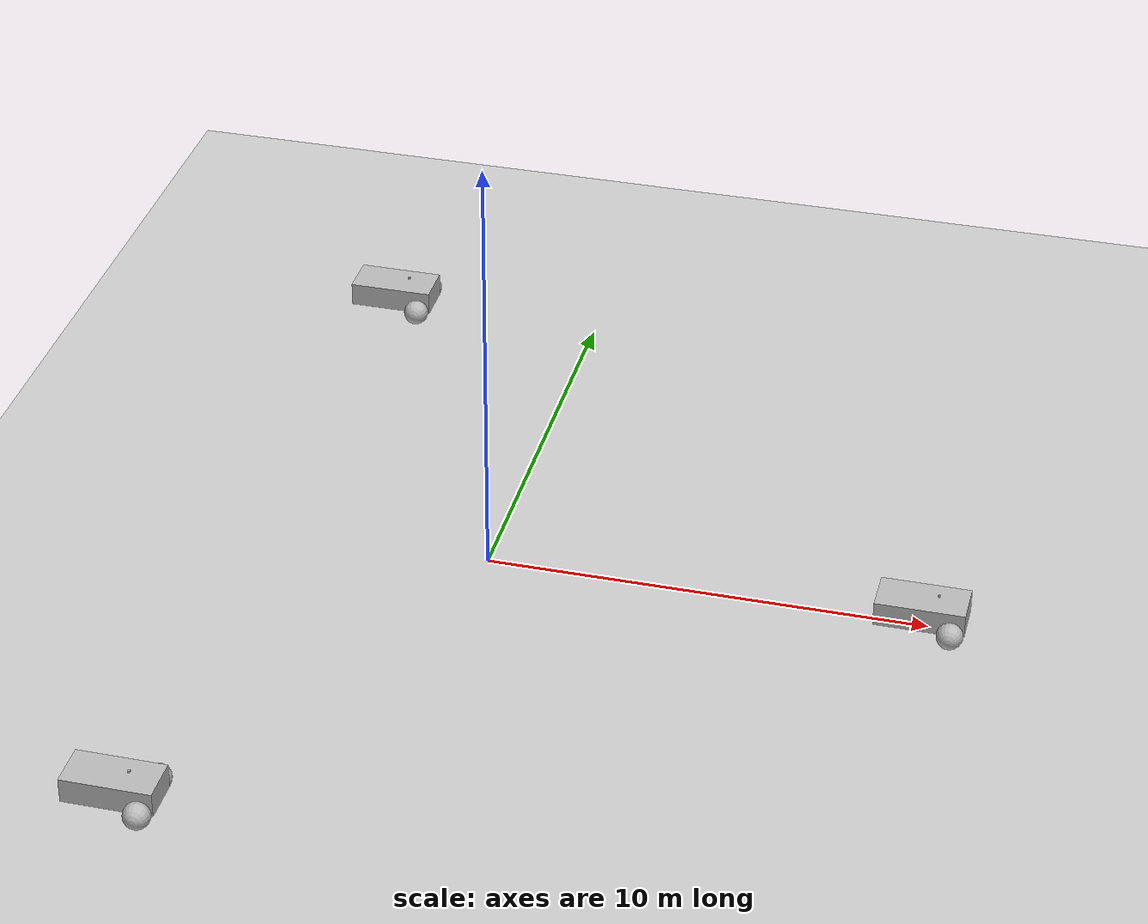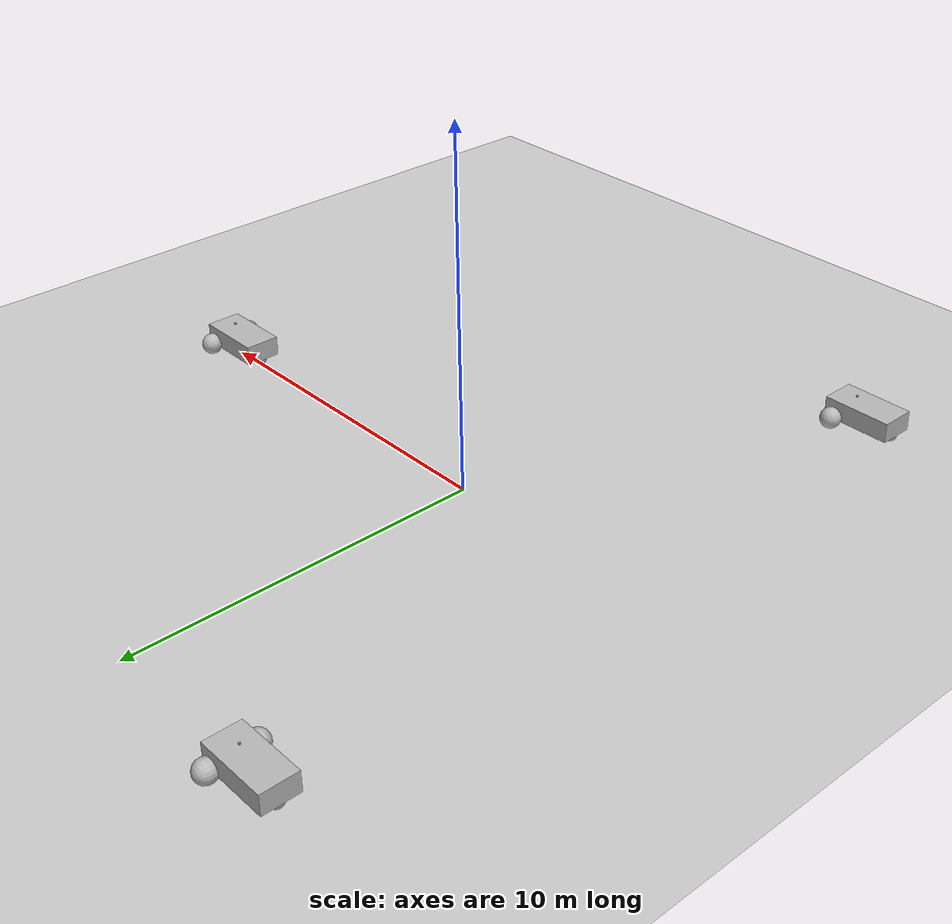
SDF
<?xml version="1.0"?>
<sdf version="1.6">
  <world name="default">

		<!-- A ground plane -->
		<include>
			<uri>model://ground_plane</uri>
		</include>

		<!-- A global light source -->
		<include>
			<uri>model://sun</uri>
		</include>

		<!-- robot1 -->
	<model name='my_robot1'>
      	<pose>10 0 0.325 0 -0 0</pose>

      	<link name='chassis'>
        	<pose>-0.151427 -0 0.175 0 -0 0</pose>
        	<inertial>
    	        <mass>1.14395</mass>
    	        <inertia>
    	        	<ixx>0.126164</ixx>
    	    	    <ixy>0</ixy>
    	    	    <ixz>0</ixz>
    	    	    <iyy>0.416519</iyy>
    	    	    <iyz>0</iyz>
    	    	    <izz>0.481014</izz>
            	</inertia>
     	   </inertial>
          <visual name='visual'>
          <geometry>
            <box>
              <size>2.01142 1 0.568726</size>
            </box>
          </geometry>
        </visual>
        <collision name='collision'>
          <geometry>
            <box>
              <size>2.01142 1 0.568726</size>
            </box>
          </geometry>
        </collision>
      </link>

      <link name='left_wheel'>
        <pose>0.554283 0.625029 -0.025 -1.5707 0 0</pose>
        <inertial>
          <mass>2</mass>
          <inertia>
            <ixx>0.145833</ixx>
            <ixy>0</ixy>
            <ixz>0</ixz>
            <iyy>0.145833</iyy>
            <iyz>0</iyz>
            <izz>0.125</izz>
          </inertia>
        </inertial>
        <visual name='visual'>
          <geometry>
            <sphere>
              <radius>0.3</radius>
            </sphere>
          </geometry>
        </visual>
        <collision name='collision'>
          <geometry>
            <sphere>
              <radius>0.3</radius>
            </sphere>
          </geometry>
          <surface>
            <friction>
              <ode>
                <mu>1</mu>
                <mu2>1</mu2>
                <slip1>0</slip1>
                <slip2>0</slip2>
              </ode>
            </friction>
            <contact>
              <ode>
                <soft_cfm>0</soft_cfm>
                <soft_erp>0.2</soft_erp>
                <kp>1e+13</kp>
                <kd>1</kd>
                <max_vel>0.01</max_vel>
                <min_depth>0.01</min_depth>
              </ode>
            </contact>
          </surface>
        </collision>
      </link>

      <link name='right_wheel'>
        <pose>0.554282 -0.625029 -0.025 -1.5707 0 0</pose>
        <inertial>
          <mass>2</mass>
          <inertia>
            <ixx>0.145833</ixx>
            <ixy>0</ixy>
            <ixz>0</ixz>
            <iyy>0.145833</iyy>
            <iyz>0</iyz>
            <izz>0.125</izz>
          </inertia>
        </inertial>
        <visual name='visual'>
          <geometry>
            <sphere>
              <radius>0.3</radius>
            </sphere>
          </geometry>
        </visual>
        <collision name='collision'>
          <geometry>
            <sphere>
              <radius>0.3</radius>
            </sphere>
          </geometry>
          <surface>
            <friction>
              <ode>
                <mu>1</mu>
                <mu2>1</mu2>
                <slip1>0</slip1>
                <slip2>0</slip2>
              </ode>
            </friction>
            <contact>
              <ode>
                <soft_cfm>0</soft_cfm>
                <soft_erp>0.2</soft_erp>
                <kp>1e+13</kp>
                <kd>1</kd>
                <max_vel>0.01</max_vel>
                <min_depth>0.01</min_depth>
              </ode>
            </contact>
          </surface>
        </collision>
      </link>

      <link name='caster'>
        <pose>-0.957138 -0 -0.125 0 -0 0</pose>
        <inertial>
          <mass>1</mass>
          <inertia>
            <ixx>0.1</ixx>
            <ixy>0</ixy>
            <ixz>0</ixz>
            <iyy>0.1</iyy>
            <iyz>0</iyz>
            <izz>0.1</izz>
          </inertia>
        </inertial>
        <visual name='visual'>
          <geometry>
            <sphere>
              <radius>0.2</radius>
            </sphere>
          </geometry>
        </visual>
        <collision name='collision'>
          <geometry>
            <sphere>
              <radius>0.2</radius>
            </sphere>
          </geometry>
        </collision>
      </link>

      <joint name='left_wheel_joint' type='revolute'>
        <parent>chassis</parent>
        <child>left_wheel</child>
        <axis>
          <xyz>0 0 1</xyz>
          <limit>
            <lower>-1.79769e+308</lower>
            <upper>1.79769e+308</upper>
          </limit>
        </axis>
      </joint>

      <joint name='right_wheel_joint' type='revolute'>
        <parent>chassis</parent>
        <child>right_wheel</child>
        <axis>
          <xyz>0 0 1</xyz>
          <limit>
            <lower>-1.79769e+308</lower>
            <upper>1.79769e+308</upper>
          </limit>
        </axis>
      </joint>

      <joint name='caster_wheel' type='ball'>
        <parent>chassis</parent>
        <child>caster</child>
      </joint>

      <link name="ray_link">
      <pose>0.2 0 0.55 0 0 0</pose>
        <visual name="visual_box">
          <geometry>
            <box>
              <size>0.05 0.05 0.05</size>
            </box>
          </geometry>
        </visual>
        <collision name="collision_box">
          <geometry>
            <box>
              <size>0.05 0.05 0.05</size>
            </box>
          </geometry>
          <laser_retro>100.0</laser_retro>
        </collision>

        <sensor name="sensor_ray" type="ray">
          <ray>
            <scan>
              <horizontal>
                <samples>300</samples>
                <resolution>1.0</resolution>
                <min_angle>-3.14</min_angle>
                <max_angle>3.14</max_angle>
              </horizontal>
              <vertical>
                <samples>100</samples>
                <resolution>1.0</resolution>
                <min_angle>-0.0</min_angle>
                <max_angle>0.5236</max_angle>
              </vertical>
            </scan>
            <range>
              <min>0.05</min>
              <max>50.0</max>
            </range>
          </ray>
          <always_on>true</always_on>
          <update_rate>1.0</update_rate>
          <plugin name="pc2" filename="libgazebo_ros_ray_sensor.so">
            <ros>
              <namespace>/demo1</namespace>
              <remapping>~/out:=pointcloud2</remapping>
            </ros>
            <output_type>sensor_msgs/PointCloud2</output_type>
          </plugin>
          <plugin name="pc" filename="libgazebo_ros_ray_sensor.so">
            <ros>
              <namespace>/demo1</namespace>
              <remapping>~/out:=pointcloud</remapping>
            </ros>
            <output_type>sensor_msgs/PointCloud</output_type>
          </plugin>
          <plugin name="laserscan" filename="libgazebo_ros_ray_sensor.so">
            <ros>
              <namespace>/demo1</namespace>
              <remapping>~/out:=laserscan</remapping>
            </ros>
            <output_type>sensor_msgs/LaserScan</output_type>
          </plugin>
          <plugin name="range" filename="libgazebo_ros_ray_sensor.so">
            <ros>
              <namespace>/demo1</namespace>
              <remapping>~/out:=range</remapping>
            </ros>
            <output_type>sensor_msgs/Range</output_type>
          </plugin>
        </sensor>

   	</link>

      <joint name="ray_joint" type="fixed">
	<child>ray_link</child>
	<parent>chassis</parent>
      </joint>

      <plugin name='diff_drive' filename='libgazebo_ros_diff_drive.so'>
    <ros>
      <namespace>/demo1</namespace>
      <remapping>cmd_vel:=cmd_demo</remapping>
      <remapping>odom:=odom_demo</remapping>
    </ros>

   	    		<!-- wheels -->
   	    		<left_joint>left_wheel_joint</left_joint>
   	    		<right_joint>right_wheel_joint</right_joint>

   	    		<!-- kinematics -->
   	    		<wheel_separation>1.25</wheel_separation>
   	    		<wheel_diameter>0.6</wheel_diameter>

   	    		<!-- limits -->
   	    		<max_wheel_torque>20</max_wheel_torque>
   	    		<max_wheel_acceleration>1.0</max_wheel_acceleration>

   	    		<!-- output -->
   	    		<publish_odom>true</publish_odom>
   	    		<publish_odom_tf>true</publish_odom_tf>
   	    		<publish_wheel_tf>true</publish_wheel_tf>

   	    		<odometry_frame>odom_demo</odometry_frame>
   	    		<robot_base_frame>chassis</robot_base_frame>
   	  		</plugin>

    </model>

   		<!-- robot2 -->
		<model name='my_robot2'>
      	<pose>-5 10 0.325 0 -0 0</pose>

      	<link name='chassis'>
        	<pose>-0.151427 -0 0.175 0 -0 0</pose>
        	<inertial>
    	        <mass>1.14395</mass>
    	        <inertia>
    	        	<ixx>0.126164</ixx>
    	    	    <ixy>0</ixy>
    	    	    <ixz>0</ixz>
    	    	    <iyy>0.416519</iyy>
    	    	    <iyz>0</iyz>
    	    	    <izz>0.481014</izz>
            	</inertia>
     	   </inertial>
          <visual name='visual'>
          <geometry>
            <box>
              <size>2.01142 1 0.568726</size>
            </box>
          </geometry>
        </visual>
        <collision name='collision'>
          <geometry>
            <box>
              <size>2.01142 1 0.568726</size>
            </box>
          </geometry>
        </collision>
      </link>

      <link name='left_wheel'>
        <pose>0.554283 0.625029 -0.025 -1.5707 0 0</pose>
        <inertial>
          <mass>2</mass>
          <inertia>
            <ixx>0.145833</ixx>
            <ixy>0</ixy>
            <ixz>0</ixz>
            <iyy>0.145833</iyy>
            <iyz>0</iyz>
            <izz>0.125</izz>
          </inertia>
        </inertial>
        <visual name='visual'>
          <geometry>
            <sphere>
              <radius>0.3</radius>
            </sphere>
          </geometry>
        </visual>
        <collision name='collision'>
          <geometry>
            <sphere>
              <radius>0.3</radius>
            </sphere>
          </geometry>
          <surface>
            <friction>
              <ode>
                <mu>1</mu>
                <mu2>1</mu2>
                <slip1>0</slip1>
                <slip2>0</slip2>
              </ode>
            </friction>
            <contact>
              <ode>
                <soft_cfm>0</soft_cfm>
                <soft_erp>0.2</soft_erp>
                <kp>1e+13</kp>
                <kd>1</kd>
                <max_vel>0.01</max_vel>
                <min_depth>0.01</min_depth>
              </ode>
            </contact>
          </surface>
        </collision>
      </link>

      <link name='right_wheel'>
        <pose>0.554282 -0.625029 -0.025 -1.5707 0 0</pose>
        <inertial>
          <mass>2</mass>
          <inertia>
            <ixx>0.145833</ixx>
            <ixy>0</ixy>
            <ixz>0</ixz>
            <iyy>0.145833</iyy>
            <iyz>0</iyz>
            <izz>0.125</izz>
          </inertia>
        </inertial>
        <visual name='visual'>
          <geometry>
            <sphere>
              <radius>0.3</radius>
            </sphere>
          </geometry>
        </visual>
        <collision name='collision'>
          <geometry>
            <sphere>
              <radius>0.3</radius>
            </sphere>
          </geometry>
          <surface>
            <friction>
              <ode>
                <mu>1</mu>
                <mu2>1</mu2>
                <slip1>0</slip1>
                <slip2>0</slip2>
              </ode>
            </friction>
            <contact>
              <ode>
                <soft_cfm>0</soft_cfm>
                <soft_erp>0.2</soft_erp>
                <kp>1e+13</kp>
                <kd>1</kd>
                <max_vel>0.01</max_vel>
                <min_depth>0.01</min_depth>
              </ode>
            </contact>
          </surface>
        </collision>
      </link>

      <link name='caster'>
        <pose>-0.957138 -0 -0.125 0 -0 0</pose>
        <inertial>
          <mass>1</mass>
          <inertia>
            <ixx>0.1</ixx>
            <ixy>0</ixy>
            <ixz>0</ixz>
            <iyy>0.1</iyy>
            <iyz>0</iyz>
            <izz>0.1</izz>
          </inertia>
        </inertial>
        <visual name='visual'>
          <geometry>
            <sphere>
              <radius>0.2</radius>
            </sphere>
          </geometry>
        </visual>
        <collision name='collision'>
          <geometry>
            <sphere>
              <radius>0.2</radius>
            </sphere>
          </geometry>
        </collision>
      </link>

      <joint name='left_wheel_joint' type='revolute'>
        <parent>chassis</parent>
        <child>left_wheel</child>
        <axis>
          <xyz>0 0 1</xyz>
          <limit>
            <lower>-1.79769e+308</lower>
            <upper>1.79769e+308</upper>
          </limit>
        </axis>
      </joint>

      <joint name='right_wheel_joint' type='revolute'>
        <parent>chassis</parent>
        <child>right_wheel</child>
        <axis>
          <xyz>0 0 1</xyz>
          <limit>
            <lower>-1.79769e+308</lower>
            <upper>1.79769e+308</upper>
          </limit>
        </axis>
      </joint>

      <joint name='caster_wheel' type='ball'>
        <parent>chassis</parent>
        <child>caster</child>
      </joint>

      <link name="ray_link">
      <pose>0.2 0 0.55 0 0 0</pose>
        <visual name="visual_box">
          <geometry>
            <box>
              <size>0.05 0.05 0.05</size>
            </box>
          </geometry>
        </visual>
        <collision name="collision_box">
          <geometry>
            <box>
              <size>0.05 0.05 0.05</size>
            </box>
          </geometry>
          <laser_retro>100.0</laser_retro>
        </collision>

        <sensor name="sensor_ray" type="ray">
          <ray>
            <scan>
              <horizontal>
                <samples>300</samples>
                <resolution>1.0</resolution>
                <min_angle>-3.14</min_angle>
                <max_angle>3.14</max_angle>
              </horizontal>
              <vertical>
                <samples>100</samples>
                <resolution>1.0</resolution>
                <min_angle>-0.0</min_angle>
                <max_angle>0.5236</max_angle>
              </vertical>
            </scan>
            <range>
              <min>0.05</min>
              <max>50.0</max>
            </range>
          </ray>
          <always_on>true</always_on>
          <update_rate>1.0</update_rate>
          <plugin name="pc2" filename="libgazebo_ros_ray_sensor.so">
            <ros>
              <namespace>/demo2</namespace>
              <remapping>~/out:=pointcloud2</remapping>
            </ros>
            <output_type>sensor_msgs/PointCloud2</output_type>
          </plugin>
          <plugin name="pc" filename="libgazebo_ros_ray_sensor.so">
            <ros>
              <namespace>/demo2</namespace>
              <remapping>~/out:=pointcloud</remapping>
            </ros>
            <output_type>sensor_msgs/PointCloud</output_type>
          </plugin>
          <plugin name="laserscan" filename="libgazebo_ros_ray_sensor.so">
            <ros>
              <namespace>/demo2</namespace>
              <remapping>~/out:=laserscan</remapping>
            </ros>
            <output_type>sensor_msgs/LaserScan</output_type>
          </plugin>
          <plugin name="range" filename="libgazebo_ros_ray_sensor.so">
            <ros>
              <namespace>/demo2</namespace>
              <remapping>~/out:=range</remapping>
            </ros>
            <output_type>sensor_msgs/Range</output_type>
          </plugin>
        </sensor>

   	</link>

      <joint name="ray_joint" type="fixed">
	<child>ray_link</child>
	<parent>chassis</parent>
      </joint>

      <plugin name='diff_drive' filename='libgazebo_ros_diff_drive.so'>
    <ros>
      <namespace>/demo2</namespace>
      <remapping>cmd_vel:=cmd_demo</remapping>
      <remapping>odom:=odom_demo</remapping>
    </ros>

   	    		<!-- wheels -->
   	    		<left_joint>left_wheel_joint</left_joint>
   	    		<right_joint>right_wheel_joint</right_joint>

   	    		<!-- kinematics -->
   	    		<wheel_separation>1.25</wheel_separation>
   	    		<wheel_diameter>0.6</wheel_diameter>

   	    		<!-- limits -->
   	    		<max_wheel_torque>20</max_wheel_torque>
   	    		<max_wheel_acceleration>1.0</max_wheel_acceleration>

   	    		<!-- output -->
   	    		<publish_odom>true</publish_odom>
   	    		<publish_odom_tf>true</publish_odom_tf>
   	    		<publish_wheel_tf>true</publish_wheel_tf>

   	    		<odometry_frame>odom_demo</odometry_frame>
   	    		<robot_base_frame>chassis</robot_base_frame>
   	  		</plugin>

    </model>

    	<!-- robot3 -->
		<model name='my_robot3'>
      	<pose>-5 -10 0.325 0 -0 0</pose>

      	<link name='chassis'>
        	<pose>-0.151427 -0 0.175 0 -0 0</pose>
        	<inertial>
    	        <mass>1.14395</mass>
    	        <inertia>
    	        	<ixx>0.126164</ixx>
    	    	    <ixy>0</ixy>
    	    	    <ixz>0</ixz>
    	    	    <iyy>0.416519</iyy>
    	    	    <iyz>0</iyz>
    	    	    <izz>0.481014</izz>
            	</inertia>
     	   </inertial>
          <visual name='visual'>
          <geometry>
            <box>
              <size>2.01142 1 0.568726</size>
            </box>
          </geometry>
        </visual>
        <collision name='collision'>
          <geometry>
            <box>
              <size>2.01142 1 0.568726</size>
            </box>
          </geometry>
        </collision>
      </link>

      <link name='left_wheel'>
        <pose>0.554283 0.625029 -0.025 -1.5707 0 0</pose>
        <inertial>
          <mass>2</mass>
          <inertia>
            <ixx>0.145833</ixx>
            <ixy>0</ixy>
            <ixz>0</ixz>
            <iyy>0.145833</iyy>
            <iyz>0</iyz>
            <izz>0.125</izz>
          </inertia>
        </inertial>
        <visual name='visual'>
          <geometry>
            <sphere>
              <radius>0.3</radius>
            </sphere>
          </geometry>
        </visual>
        <collision name='collision'>
          <geometry>
            <sphere>
              <radius>0.3</radius>
            </sphere>
          </geometry>
          <surface>
            <friction>
              <ode>
                <mu>1</mu>
                <mu2>1</mu2>
                <slip1>0</slip1>
                <slip2>0</slip2>
              </ode>
            </friction>
            <contact>
              <ode>
                <soft_cfm>0</soft_cfm>
                <soft_erp>0.2</soft_erp>
                <kp>1e+13</kp>
                <kd>1</kd>
                <max_vel>0.01</max_vel>
                <min_depth>0.01</min_depth>
              </ode>
            </contact>
          </surface>
        </collision>
      </link>

      <link name='right_wheel'>
        <pose>0.554282 -0.625029 -0.025 -1.5707 0 0</pose>
        <inertial>
          <mass>2</mass>
          <inertia>
            <ixx>0.145833</ixx>
            <ixy>0</ixy>
            <ixz>0</ixz>
            <iyy>0.145833</iyy>
            <iyz>0</iyz>
            <izz>0.125</izz>
          </inertia>
        </inertial>
        <visual name='visual'>
          <geometry>
            <sphere>
              <radius>0.3</radius>
            </sphere>
          </geometry>
        </visual>
        <collision name='collision'>
          <geometry>
            <sphere>
              <radius>0.3</radius>
            </sphere>
          </geometry>
          <surface>
            <friction>
              <ode>
                <mu>1</mu>
                <mu2>1</mu2>
                <slip1>0</slip1>
                <slip2>0</slip2>
              </ode>
            </friction>
            <contact>
              <ode>
                <soft_cfm>0</soft_cfm>
                <soft_erp>0.2</soft_erp>
                <kp>1e+13</kp>
                <kd>1</kd>
                <max_vel>0.01</max_vel>
                <min_depth>0.01</min_depth>
              </ode>
            </contact>
          </surface>
        </collision>
      </link>

      <link name='caster'>
        <pose>-0.957138 -0 -0.125 0 -0 0</pose>
        <inertial>
          <mass>1</mass>
          <inertia>
            <ixx>0.1</ixx>
            <ixy>0</ixy>
            <ixz>0</ixz>
            <iyy>0.1</iyy>
            <iyz>0</iyz>
            <izz>0.1</izz>
          </inertia>
        </inertial>
        <visual name='visual'>
          <geometry>
            <sphere>
              <radius>0.2</radius>
            </sphere>
          </geometry>
        </visual>
        <collision name='collision'>
          <geometry>
            <sphere>
              <radius>0.2</radius>
            </sphere>
          </geometry>
        </collision>
      </link>

      <joint name='left_wheel_joint' type='revolute'>
        <parent>chassis</parent>
        <child>left_wheel</child>
        <axis>
          <xyz>0 0 1</xyz>
          <limit>
            <lower>-1.79769e+308</lower>
            <upper>1.79769e+308</upper>
          </limit>
        </axis>
      </joint>

      <joint name='right_wheel_joint' type='revolute'>
        <parent>chassis</parent>
        <child>right_wheel</child>
        <axis>
          <xyz>0 0 1</xyz>
          <limit>
            <lower>-1.79769e+308</lower>
            <upper>1.79769e+308</upper>
          </limit>
        </axis>
      </joint>

      <joint name='caster_wheel' type='ball'>
        <parent>chassis</parent>
        <child>caster</child>
      </joint>

      <link name="ray_link">
      <pose>0.2 0 0.55 0 0 0</pose>
        <visual name="visual_box">
          <geometry>
            <box>
              <size>0.05 0.05 0.05</size>
            </box>
          </geometry>
        </visual>
        <collision name="collision_box">
          <geometry>
            <box>
              <size>0.05 0.05 0.05</size>
            </box>
          </geometry>
          <laser_retro>100.0</laser_retro>
        </collision>

        <sensor name="sensor_ray" type="ray">
          <ray>
            <scan>
              <horizontal>
                <samples>300</samples>
                <resolution>1.0</resolution>
                <min_angle>-3.14</min_angle>
                <max_angle>3.14</max_angle>
              </horizontal>
              <vertical>
                <samples>100</samples>
                <resolution>1.0</resolution>
                <min_angle>-0.0</min_angle>
                <max_angle>0.5236</max_angle>
              </vertical>
            </scan>
            <range>
              <min>0.05</min>
              <max>50.0</max>
            </range>
          </ray>
          <always_on>true</always_on>
          <update_rate>1.0</update_rate>
          <plugin name="pc2" filename="libgazebo_ros_ray_sensor.so">
            <ros>
              <namespace>/demo3</namespace>
              <remapping>~/out:=pointcloud2</remapping>
            </ros>
            <output_type>sensor_msgs/PointCloud2</output_type>
          </plugin>
          <plugin name="pc" filename="libgazebo_ros_ray_sensor.so">
            <ros>
              <namespace>/demo3</namespace>
              <remapping>~/out:=pointcloud</remapping>
            </ros>
            <output_type>sensor_msgs/PointCloud</output_type>
          </plugin>
          <plugin name="laserscan" filename="libgazebo_ros_ray_sensor.so">
            <ros>
              <namespace>/demo3</namespace>
              <remapping>~/out:=laserscan</remapping>
            </ros>
            <output_type>sensor_msgs/LaserScan</output_type>
          </plugin>
          <plugin name="range" filename="libgazebo_ros_ray_sensor.so">
            <ros>
              <namespace>/demo3</namespace>
              <remapping>~/out:=range</remapping>
            </ros>
            <output_type>sensor_msgs/Range</output_type>
          </plugin>
        </sensor>

   	</link>

      <joint name="ray_joint" type="fixed">
	<child>ray_link</child>
	<parent>chassis</parent>
      </joint>

      <plugin name='diff_drive' filename='libgazebo_ros_diff_drive.so'>
    <ros>
      <namespace>/demo3</namespace>
      <remapping>cmd_vel:=cmd_demo</remapping>
      <remapping>odom:=odom_demo</remapping>
    </ros>

   	    		<!-- wheels -->
   	    		<left_joint>left_wheel_joint</left_joint>
   	    		<right_joint>right_wheel_joint</right_joint>

   	    		<!-- kinematics -->
   	    		<wheel_separation>1.25</wheel_separation>
   	    		<wheel_diameter>0.6</wheel_diameter>

   	    		<!-- limits -->
   	    		<max_wheel_torque>20</max_wheel_torque>
   	    		<max_wheel_acceleration>1.0</max_wheel_acceleration>

   	    		<!-- output -->
   	    		<publish_odom>true</publish_odom>
   	    		<publish_odom_tf>true</publish_odom_tf>
   	    		<publish_wheel_tf>true</publish_wheel_tf>

   	    		<odometry_frame>odom_demo</odometry_frame>
   	    		<robot_base_frame>chassis</robot_base_frame>
   	  		</plugin>

    </model>

	</world>
</sdf>
